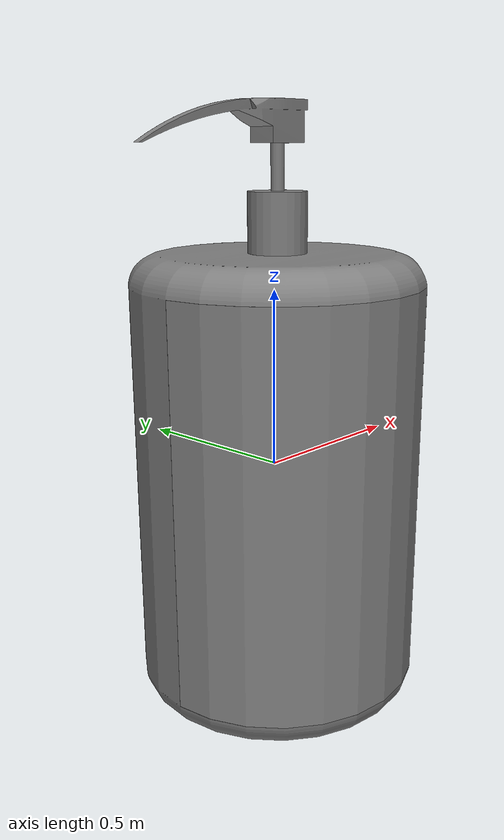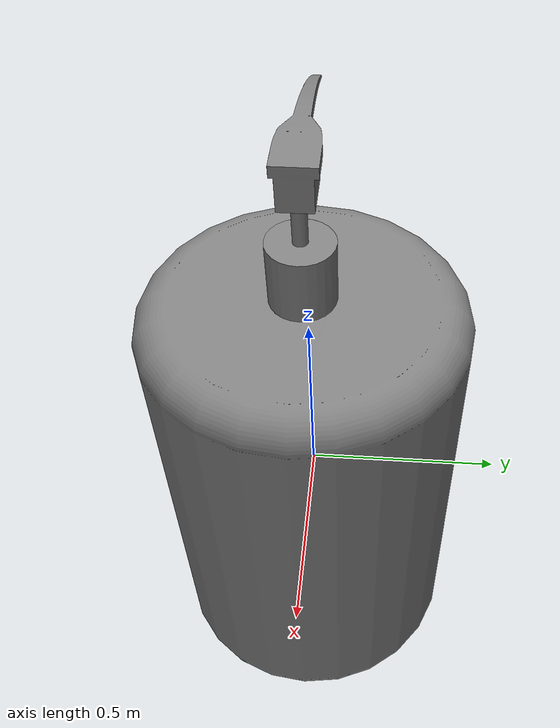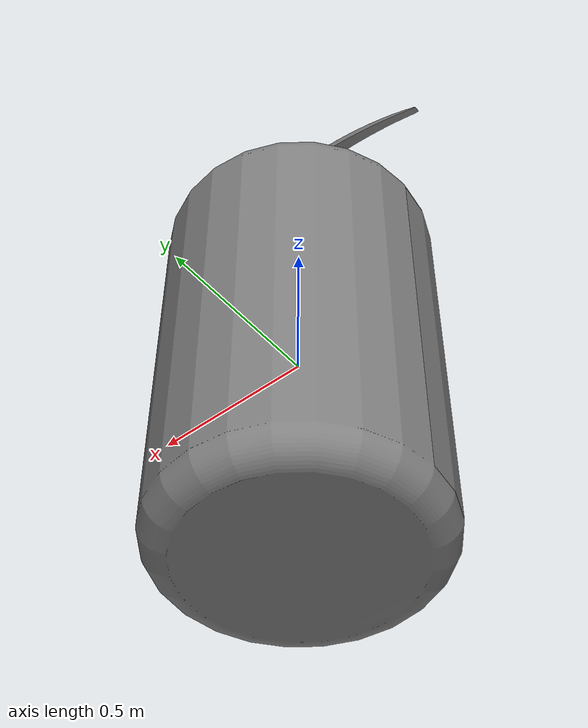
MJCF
<?xml version='1.0' encoding='UTF-8'?>
<mujoco model="partnet_d352a7410547373c4cd1f145ee534e3">
  <compiler angle="radian"/>
  <asset>
    <mesh name="original_8" content_type="model/obj" file="textured_objs/original_8.obj"/>
    <mesh name="original_7" content_type="model/obj" file="textured_objs/original_7.obj"/>
    <mesh name="original_9" content_type="model/obj" file="textured_objs/original_9.obj"/>
    <mesh name="original_4" content_type="model/obj" file="textured_objs/original_4.obj"/>
    <mesh name="original_3" content_type="model/obj" file="textured_objs/original_3.obj"/>
    <mesh name="original_2" content_type="model/obj" file="textured_objs/original_2.obj"/>
    <mesh name="original_5" content_type="model/obj" file="textured_objs/original_5.obj"/>
    <mesh name="original_6" content_type="model/obj" file="textured_objs/original_6.obj"/>
    <mesh name="original_1" content_type="model/obj" file="textured_objs/original_1.obj"/>
  </asset>
  <worldbody>
    <body name="base">
      <body name="link_2" quat="0.5 0.5 -0.5 -0.5">
        <geom type="mesh" mesh="original_4"/>
        <geom type="mesh" mesh="original_3"/>
        <geom type="mesh" mesh="original_2"/>
        <geom type="mesh" mesh="original_5"/>
        <geom type="mesh" mesh="original_6"/>
        <geom type="mesh" mesh="original_1"/>
        <body name="link_1_helper" pos="0.010114 0 -0.00171535">
          <inertial pos="0 0 0" mass="1e-06" diaginertia="1e-10 1e-10 1e-10"/>
          <joint name="joint_4" pos="0 0 0" axis="0 1 0" type="slide" range="0 0.02"/>
          <body name="link_1">
            <joint name="joint_1" pos="0 0 0" axis="0 -1 0"/>
            <geom pos="-0.010114 0 0.00171535" quat="1 0 0 0" type="mesh" mesh="original_9"/>
            <body name="link_0_helper" pos="0 0 -1.50272e-07">
              <inertial pos="0 0 0" mass="1e-06" diaginertia="1e-10 1e-10 1e-10"/>
              <joint name="joint_3" pos="0 0 0" axis="0 -1 0" type="slide" range="0 0.12"/>
              <body name="link_0">
                <joint name="joint_0" pos="0 0 0" axis="0 1 0"/>
                <geom pos="-0.010114 0 0.0017155" quat="1 0 0 0" type="mesh" mesh="original_8"/>
                <geom pos="-0.010114 0 0.0017155" type="mesh" mesh="original_7"/>
              </body>
            </body>
          </body>
        </body>
      </body>
    </body>
  </worldbody>
</mujoco>
